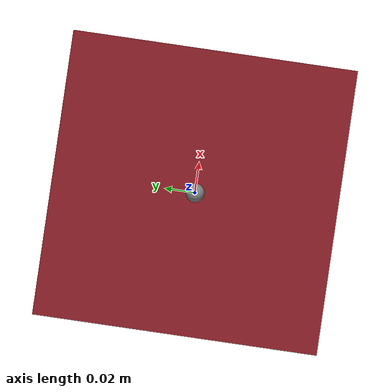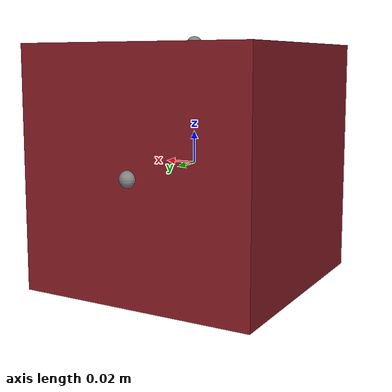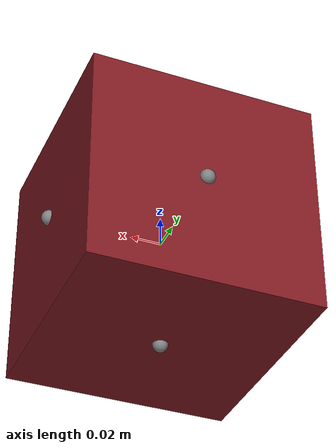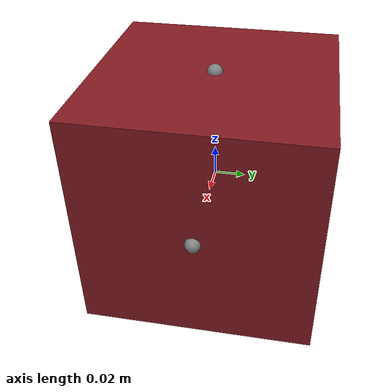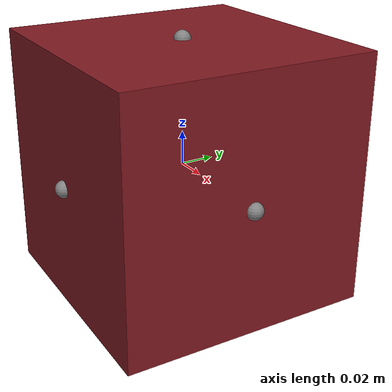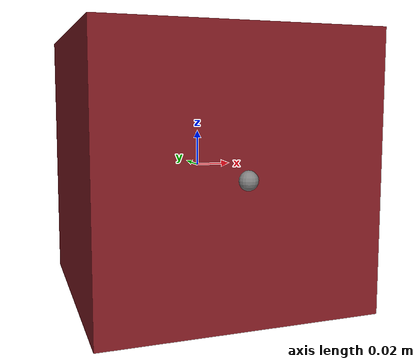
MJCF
<mujoco model="MuJoCo Model">
  <compiler angle="radian"/>

  <worldbody>
    <body name="brick">
      <geom name="brick" size="0.075 0.075 0.075" type="box" mass="0.05899" rgba="0.5 0.1 0.13 1"/>
      <site name="front" pos="0.075 0 0"/>
      <site name="left" pos="0 -0.075 0"/>
      <site name="right" pos="0 0.075 0"/>
      <site name="up" pos="0 0 0.075"/>
      <site name="down" pos="0 0 -0.075"/>
    </body>
  </worldbody>
</mujoco>
